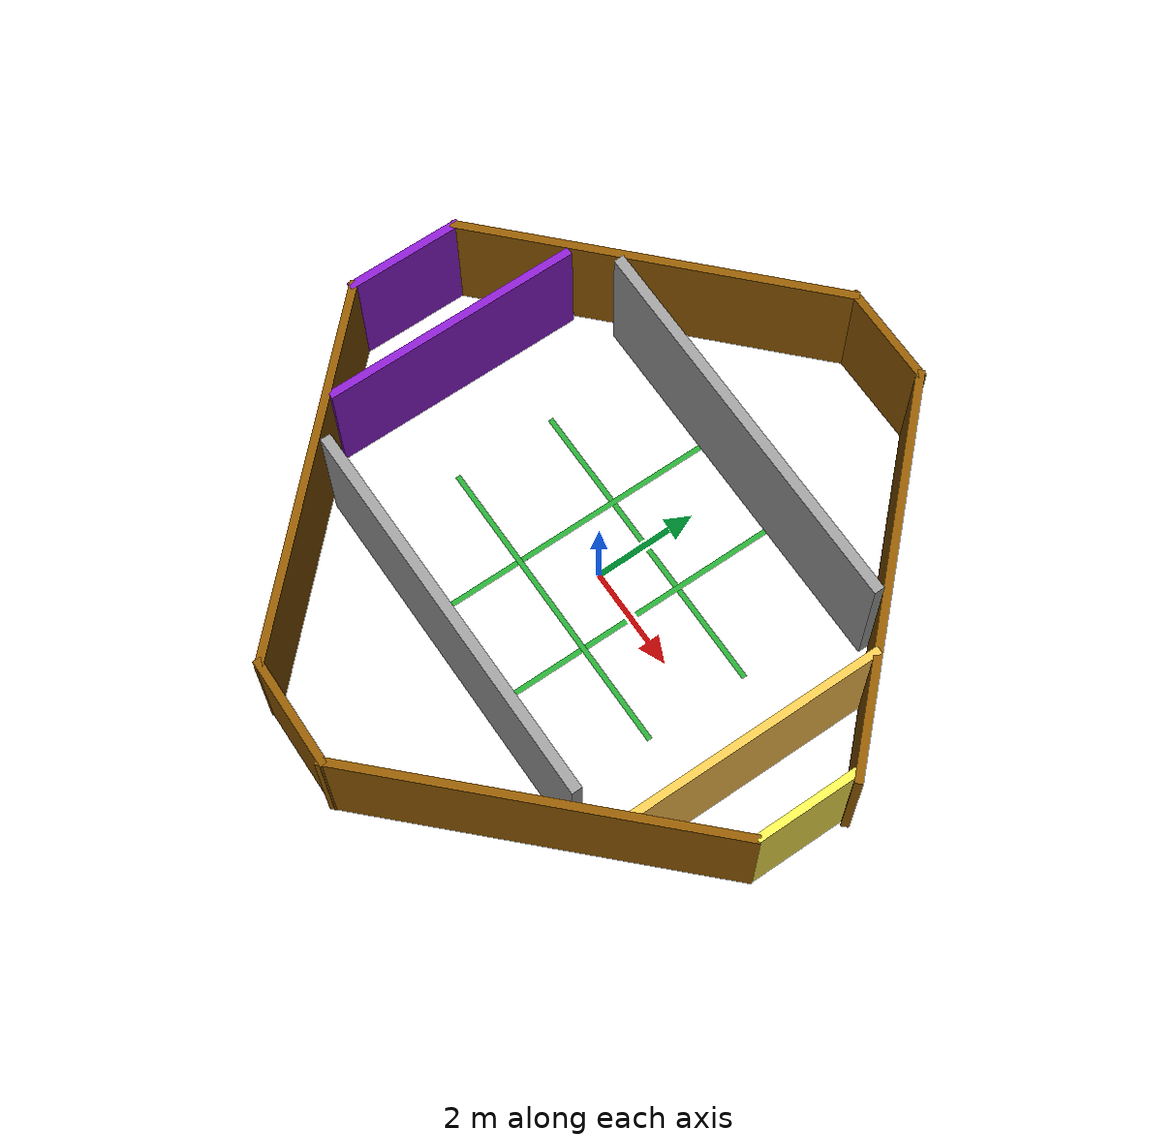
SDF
<sdf version="1.7">
 <world name="default">
  <light name="sun" type="directional">
   <pose>0 0 10 0 -0 0</pose>
   <diffuse>0.8 0.8 0.8 1</diffuse>
   <specular>0.2 0.2 0.2 1</specular>
   <attenuation>
    <range>1000</range>
    <constant>0.9</constant>
    <linear>0.01</linear>
    <quadratic>0.001</quadratic>
   </attenuation>
   <direction>-0.5 0.1 -0.9</direction>
   <spot><inner_angle>0</inner_angle><outer_angle>0</outer_angle><falloff>0</falloff></spot>
  </light>
  <gravity>0 0 -9.8</gravity>
  <magnetic_field>6e-06 2.3e-05 -4.2e-05</magnetic_field>
  <atmosphere type="adiabatic"/>
  <physics type="ode">
   <max_step_size>0.001</max_step_size>
   <real_time_factor>1</real_time_factor>
   <real_time_update_rate>1000</real_time_update_rate>
  </physics>
  <scene><ambient>0.4 0.4 0.4 1</ambient><background>0.7 0.7 0.7 1</background><shadows>1</shadows></scene>
  <spherical_coordinates>
   <surface_model>EARTH_WGS84</surface_model>
   <latitude_deg>0</latitude_deg>
   <longitude_deg>0</longitude_deg>
   <elevation>0</elevation>
   <heading_deg>0</heading_deg>
  </spherical_coordinates>
  <model name="greenline vertical">
   <static>1</static>
   <link name="link_ground">
    <collision name="collision">
     <geometry><plane><normal>0 0 1</normal><size>6 0.1</size></plane></geometry>
     <surface><friction><ode><mu>100</mu><mu2>50</mu2></ode></friction></surface>
    </collision>
    <visual name="visual_ground">
     <cast_shadows>0</cast_shadows>
     <geometry><plane><normal>0 0 1</normal><size>6 0.1</size></plane></geometry>
     <material>
      <script><uri>file://media/materials/scripts/gazebo.material</uri><name>Gazebo/Green</name></script>
     </material>
    </visual>
   </link>
   <pose>0.002273 0.998949 0 0 -0 0</pose>
  </model>
  <model name="greenline horizontal">
   <static>1</static>
   <link name="link_ground">
    <collision name="collision">
     <geometry><plane><normal>0 0 1</normal><size>0.1 6</size></plane></geometry>
     <surface><friction><ode><mu>100</mu><mu2>50</mu2></ode></friction></surface>
    </collision>
    <visual name="visual_ground">
     <cast_shadows>0</cast_shadows>
     <geometry><plane><normal>0 0 1</normal><size>0.1 6</size></plane></geometry>
     <material>
      <script><uri>file://media/materials/scripts/gazebo.material</uri><name>Gazebo/Green</name></script>
     </material>
    </visual>
   </link>
   <pose>-1.00435 -0.001184 0 0 -0 0</pose>
  </model>
  <model name="greenline vertical_0">
   <static>1</static>
   <link name="link_ground">
    <collision name="collision">
     <geometry><plane><normal>0 0 1</normal><size>6 0.1</size></plane></geometry>
     <surface><friction><ode><mu>100</mu><mu2>50</mu2></ode></friction></surface>
    </collision>
    <visual name="visual_ground">
     <cast_shadows>0</cast_shadows>
     <geometry><plane><normal>0 0 1</normal><size>6 0.1</size></plane></geometry>
     <material>
      <script><uri>file://media/materials/scripts/gazebo.material</uri><name>Gazebo/Green</name></script>
     </material>
    </visual>
   </link>
   <pose>0.000189 -1.00572 0 0 -0 0</pose>
  </model>
  <model name="greenline horizontal_0">
   <static>1</static>
   <link name="link_ground">
    <collision name="collision">
     <geometry><plane><normal>0 0 1</normal><size>0.1 6</size></plane></geometry>
     <surface><friction><ode><mu>100</mu><mu2>50</mu2></ode></friction></surface>
    </collision>
    <visual name="visual_ground">
     <cast_shadows>0</cast_shadows>
     <geometry><plane><normal>0 0 1</normal><size>0.1 6</size></plane></geometry>
     <material>
      <script><uri>file://media/materials/scripts/gazebo.material</uri><name>Gazebo/Green</name></script>
     </material>
    </visual>
   </link>
   <pose>0.988122 -0.001184 0 0 -0 0</pose>
  </model>
  <model name="Arena">
   <link name="Wall_0">
    <collision name="Wall_0_Collision">
     <geometry><box><size>2.26 0.15 2.5</size></box></geometry>
     <pose>0 0 1.25 0 -0 0</pose>
    </collision>
    <visual name="Wall_0_Visual">
     <pose>0 0 1.25 0 -0 0</pose>
     <geometry><box><size>2.26 0.15 2.5</size></box></geometry>
     <material>
      <script><uri>file://media/materials/scripts/gazebo.material</uri><name>Gazebo/Grey</name></script>
      <ambient>0.533333 0.109804 0.792157 1</ambient>
     </material>
     <meta><layer>0</layer></meta>
    </visual>
    <pose>-6.08112 0.057105 0 0 -0 1.5708</pose>
   </link>
   <link name="Wall_10">
    <collision name="Wall_10_Collision">
     <geometry><box><size>2 0.15 2.5</size></box></geometry>
     <pose>0 0 1.25 0 -0 0</pose>
    </collision>
    <visual name="Wall_10_Visual">
     <pose>0 0 1.25 0 -0 0</pose>
     <geometry><box><size>2 0.15 2.5</size></box></geometry>
     <material>
      <script><uri>file://media/materials/scripts/gazebo.material</uri><name>Gazebo/Grey</name></script>
      <ambient>0.988235 0.913725 0.309804 1</ambient>
     </material>
     <meta><layer>0</layer></meta>
    </visual>
    <pose>5.95354 -0.054343 0 0 -0 -1.5708</pose>
   </link>
   <link name="Wall_12">
    <collision name="Wall_12_Collision">
     <geometry><box><size>7.5 0.15 2.5</size></box></geometry>
     <pose>0 0 1.25 0 -0 0</pose>
    </collision>
    <visual name="Wall_12_Visual">
     <pose>0 0 1.25 0 -0 0</pose>
     <geometry><box><size>7.5 0.15 2.5</size></box></geometry>
     <material>
      <script><uri>file://media/materials/scripts/gazebo.material</uri><name>Gazebo/Grey</name></script>
      <ambient>0.560784 0.34902 0.00784314 1</ambient>
     </material>
     <meta><layer>0</layer></meta>
    </visual>
    <pose>3.4825 3.47549 0 0 -0 -0.785398</pose>
   </link>
   <link name="Wall_14">
    <collision name="Wall_14_Collision">
     <geometry><box><size>7.25 0.15 2.5</size></box></geometry>
     <pose>0 0 1.25 0 -0 0</pose>
    </collision>
    <visual name="Wall_14_Visual">
     <pose>0 0 1.25 0 -0 0</pose>
     <geometry><box><size>7.25 0.15 2.5</size></box></geometry>
     <material>
      <script><uri>file://media/materials/scripts/gazebo.material</uri><name>Gazebo/Grey</name></script>
      <ambient>0.560784 0.34902 0.00784314 1</ambient>
     </material>
     <meta><layer>0</layer></meta>
    </visual>
    <pose>3.43107 -3.56388 0 0 -0 0.785398</pose>
   </link>
   <link name="Wall_2">
    <collision name="Wall_2_Collision">
     <geometry><box><size>7.23587 0.15 2.5</size></box></geometry>
     <pose>0 0 1.25 0 -0 0</pose>
    </collision>
    <visual name="Wall_2_Visual">
     <pose>0 0 1.25 0 -0 0</pose>
     <geometry><box><size>7.23587 0.15 2.5</size></box></geometry>
     <material>
      <script><uri>file://media/materials/scripts/gazebo.material</uri><name>Gazebo/Grey</name></script>
      <ambient>0.560784 0.34902 0.00784314 1</ambient>
     </material>
     <meta><layer>0</layer></meta>
    </visual>
    <pose>-3.57089 -3.49812 0 0 -0 -0.783402</pose>
   </link>
   <link name="Wall_4">
    <collision name="Wall_4_Collision">
     <geometry><box><size>2.14504 0.15 2.5</size></box></geometry>
     <pose>0 0 1.25 0 -0 0</pose>
    </collision>
    <visual name="Wall_4_Visual">
     <pose>0 0 1.25 0 -0 0</pose>
     <geometry><box><size>2.14504 0.15 2.5</size></box></geometry>
     <material>
      <script><uri>file://media/materials/scripts/gazebo.material</uri><name>Gazebo/Grey</name></script>
      <ambient>0.560784 0.34902 0.00784314 1</ambient>
     </material>
     <meta><layer>0</layer></meta>
    </visual>
    <pose>-0.063333 -6.02808 0 0 -0 -0.019776</pose>
   </link>
   <link name="Wall_6">
    <collision name="Wall_6_Collision">
     <geometry><box><size>7.27614 0.15 2.5</size></box></geometry>
     <pose>0 0 1.25 0 -0 0</pose>
    </collision>
    <visual name="Wall_6_Visual">
     <pose>0 0 1.25 0 -0 0</pose>
     <geometry><box><size>7.27614 0.15 2.5</size></box></geometry>
     <material>
      <script><uri>file://media/materials/scripts/gazebo.material</uri><name>Gazebo/Grey</name></script>
      <ambient>0.560784 0.34902 0.00784314 1</ambient>
     </material>
     <meta><layer>0</layer></meta>
    </visual>
    <pose>-3.51862 3.58811 0 0 -0 0.768232</pose>
   </link>
   <link name="Wall_8">
    <collision name="Wall_8_Collision">
     <geometry><box><size>2 0.15 2.5</size></box></geometry>
     <pose>0 0 1.25 0 -0 0</pose>
    </collision>
    <visual name="Wall_8_Visual">
     <pose>0 0 1.25 0 -0 0</pose>
     <geometry><box><size>2 0.15 2.5</size></box></geometry>
     <material>
      <script><uri>file://media/materials/scripts/gazebo.material</uri><name>Gazebo/Grey</name></script>
      <ambient>0.560784 0.34902 0.00784314 1</ambient>
     </material>
     <meta><layer>0</layer></meta>
    </visual>
    <pose>-0.041118 6.07411 0 0 -0 0</pose>
   </link>
   <static>1</static>
  </model>
  <model name="grey_wall_1">
   <static>1</static>
   <link name="link">
    <pose>0 0 1.4 0 -0 0</pose>
    <collision name="collision"><geometry><box><size>7.5 0.2 2.8</size></box></geometry></collision>
    <visual name="visual">
     <cast_shadows>0</cast_shadows>
     <geometry><box><size>7.5 0.2 2.8</size></box></geometry>
     <material>
      <script>
       <uri>model://grey_wall/materials/scripts</uri>
       <uri>model://grey_wall/materials/textures</uri>
       <name>vrc/grey_wall</name>
      </script>
     </material>
    </visual>
   </link>
   <pose>0 3 0 0 -0 0</pose>
  </model>
  <model name="grey_wall_2">
   <static>1</static>
   <link name="link">
    <pose>0 0 1.4 0 -0 0</pose>
    <collision name="collision"><geometry><box><size>7.5 0.2 2.8</size></box></geometry></collision>
    <visual name="visual">
     <cast_shadows>0</cast_shadows>
     <geometry><box><size>7.5 0.2 2.8</size></box></geometry>
     <material>
      <script>
       <uri>model://grey_wall/materials/scripts</uri>
       <uri>model://grey_wall/materials/textures</uri>
       <name>vrc/grey_wall</name>
      </script>
     </material>
    </visual>
   </link>
   <pose>0 -3 0 0 -0 0</pose>
  </model>
  <model name="dumbell_walls">
   <link name="Wall_0">
    <collision name="Wall_0_Collision">
     <geometry><box><size>4.95 0.15 2.5</size></box></geometry>
     <pose>0 0 1.25 0 -0 0</pose>
    </collision>
    <visual name="Wall_0_Visual">
     <pose>0 0 1.25 0 -0 0</pose>
     <geometry><box><size>4.95 0.15 2.5</size></box></geometry>
     <material>
      <script><uri>file://media/materials/scripts/gazebo.material</uri><name>Gazebo/Grey</name></script>
      <ambient>1 0.764706 0.305882 1</ambient>
     </material>
     <meta><layer>0</layer></meta>
    </visual>
    <pose>4.5 0 0 0 -0 1.5708</pose>
   </link>
   <link name="Wall_2">
    <collision name="Wall_2_Collision">
     <geometry><box><size>4.95 0.15 2.5</size></box></geometry>
     <pose>0 0 1.25 0 -0 0</pose>
    </collision>
    <visual name="Wall_2_Visual">
     <pose>0 0 1.25 0 -0 0</pose>
     <geometry><box><size>4.95 0.15 2.5</size></box></geometry>
     <material>
      <script><uri>file://media/materials/scripts/gazebo.material</uri><name>Gazebo/Grey</name></script>
      <ambient>0.533333 0.109804 0.792157 1</ambient>
     </material>
     <meta><layer>0</layer></meta>
    </visual>
    <pose>-4.5 0 0 0 -0 -1.5708</pose>
   </link>
   <static>1</static>
  </model>
 </world>
</sdf>
